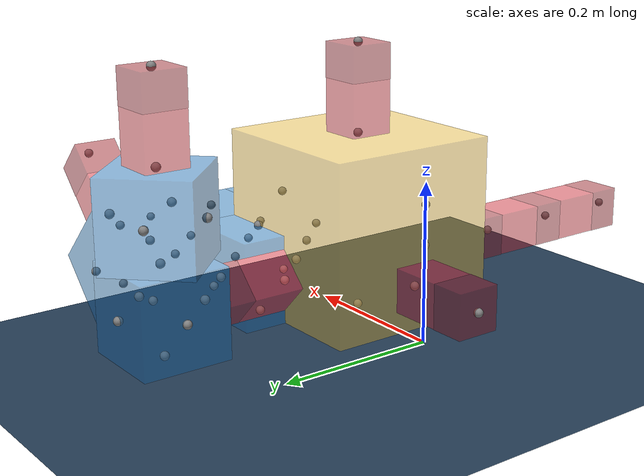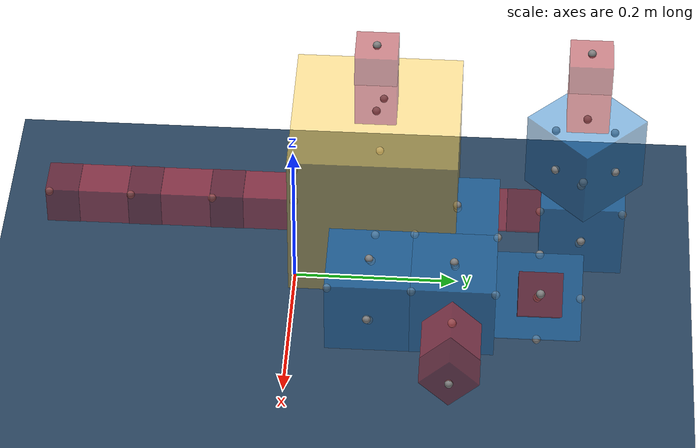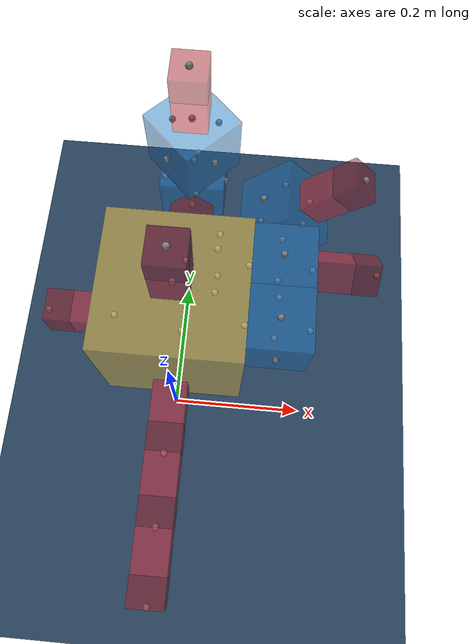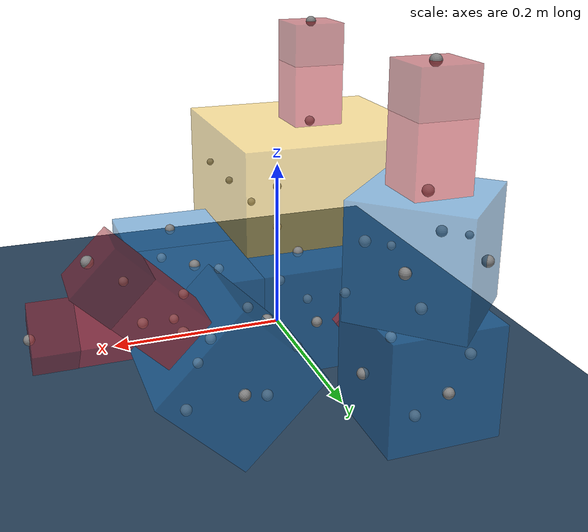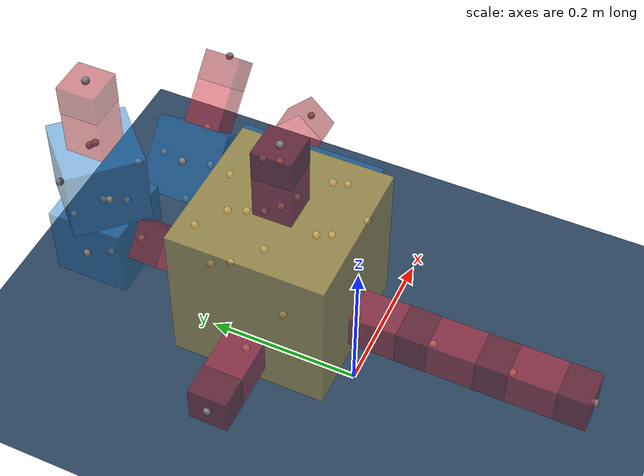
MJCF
<mujoco model="MuJoCo Model">
  <compiler angle="radian"/>

  <option integrator="implicitfast"/>

  <visual>
    <global offwidth="1280" offheight="960"/>
  </visual>

  <default>
    <default class="robot-main">
      <default class="robot-0-5-1-main"/>
      <default class="robot-0-15-0-main"/>
      <default class="robot-0-16-3-main"/>
      <default class="robot-0-13-4-main"/>
      <default class="robot-0-14-2-main"/>
      <default class="robot-5-12-0-main"/>
      <default class="robot-15-3-0-main"/>
      <default class="robot-14-19-5-main"/>
      <default class="robot-12-7-0-main"/>
      <default class="robot-3-9-2-main"/>
      <default class="robot-9-10-0-main"/>
      <default class="robot-19-6-0-main"/>
      <default class="robot-19-4-2-main"/>
      <default class="robot-19-1-3-main"/>
      <default class="robot-6-18-3-main"/>
    </default>
  </default>

  <asset>
    <texture type="2d" colorspace="auto" name="grid" builtin="checker" rgb1="0.1 0.2 0.3" rgb2="0.2 0.3 0.4" width="600" height="600"/>
    <material name="grid" texture="grid" texuniform="true" texrepeat="3 3" reflectance="0.2"/>
  </asset>

  <worldbody>
    <geom name="floor" size="1 1 0.1" type="plane" material="grid"/>
    <site pos="0 0 0.173205"/>
    <light name="light" pos="0 0 1" dir="0 0 -1" castshadow="false"/>
    <body name="robot-world" pos="0 0 0.173205">
      <joint type="free"/>
      <body name="robot-core">
        <geom name="robot-core" size="0.1 0.1 0.1" pos="0 0.1 0" type="box" mass="1" rgba="0.992157 0.792157 0.25098 0.5"/>
        <site name="robot-core-front" pos="0 0.2 -0.05"/>
        <site name="robot-core-back" pos="0 0 -0.05" quat="0 0 0 1"/>
        <site name="robot-core-left" pos="-0.1 0.1 -0.05" quat="0.707107 0 0 0.707107"/>
        <site name="robot-core-right" pos="0.1 0.1 -0.05" quat="-0.707107 0 0 0.707107"/>
        <site name="robot-core-top" pos="0 0.1 0.1" quat="0.707107 0.707107 0 0"/>
        <site name="robot-core-bottom" pos="0 0.1 -0.1" quat="0 0 -0.707107 0.707107"/>
        <body name="robot-0-5-1-hinge" pos="0 0 -0.05" quat="0 0 0 1">
          <body name="robot-0-5-1-stator" pos="0 0.03 0">
            <geom name="robot-0-5-1-stator" size="0.02475 0.0297 0.02475" type="box" mass="0.02" rgba="0.87451 0.160784 0.207843 0.5"/>
          </body>
          <body name="robot-0-5-1-rotor" pos="0 0.08 0">
            <joint name="robot-0-5-1-servo" pos="0 -0.02 0" axis="0 0 1"/>
            <geom name="robot-0-5-1-rotor" size="0.025 0.02 0.025" type="box" mass="0.04" rgba="0.627451 0.0941176 0.129412 0.5"/>
            <site name="robot-0-5-1-hinge-front" pos="0 0.02 0"/>
            <body name="robot-5-12-0-hinge" pos="0 0.02 0" quat="0 0 1 0">
              <body name="robot-5-12-0-stator" pos="0 0.03 0">
                <geom name="robot-5-12-0-stator" size="0.02475 0.0297 0.02475" type="box" mass="0.02" rgba="0.87451 0.160784 0.207843 0.5"/>
              </body>
              <body name="robot-5-12-0-rotor" pos="0 0.08 0">
                <joint name="robot-5-12-0-servo" pos="0 -0.02 0" axis="0 0 1"/>
                <geom name="robot-5-12-0-rotor" size="0.025 0.02 0.025" type="box" mass="0.04" rgba="0.627451 0.0941176 0.129412 0.5"/>
                <site name="robot-5-12-0-hinge-front" pos="0 0.02 0"/>
                <body name="robot-12-7-0-hinge" pos="0 0.02 0" quat="0 0 1 0">
                  <body name="robot-12-7-0-stator" pos="0 0.03 0">
                    <geom name="robot-12-7-0-stator" size="0.02475 0.0297 0.02475" type="box" mass="0.02" rgba="0.87451 0.160784 0.207843 0.5"/>
                  </body>
                  <body name="robot-12-7-0-rotor" pos="0 0.08 0">
                    <joint name="robot-12-7-0-servo" pos="0 -0.02 0" axis="0 0 1"/>
                    <geom name="robot-12-7-0-rotor" size="0.025 0.02 0.025" type="box" mass="0.04" rgba="0.627451 0.0941176 0.129412 0.5"/>
                    <site name="robot-12-7-0-hinge-front" pos="0 0.02 0"/>
                  </body>
                </body>
              </body>
            </body>
          </body>
        </body>
        <body name="robot-0-15-0-hinge" pos="0 0.2 -0.05" quat="-0.382911 0 0.923785 0">
          <body name="robot-0-15-0-stator" pos="0 0.03 0">
            <geom name="robot-0-15-0-stator" size="0.02475 0.0297 0.02475" type="box" mass="0.02" rgba="0.87451 0.160784 0.207843 0.5"/>
          </body>
          <body name="robot-0-15-0-rotor" pos="0 0.08 0">
            <joint name="robot-0-15-0-servo" pos="0 -0.02 0" axis="0 0 1"/>
            <geom name="robot-0-15-0-rotor" size="0.025 0.02 0.025" type="box" mass="0.04" rgba="0.627451 0.0941176 0.129412 0.5"/>
            <site name="robot-0-15-0-hinge-front" pos="0 0.02 0"/>
            <body name="robot-15-3-0-core" pos="0 0.02 0" quat="0.923785 0 0.382911 0">
              <geom name="robot-15-3-0-core" size="0.05 0.05 0.05" pos="0 0.05 0" type="box" mass="0.055" rgba="0.109804 0.466667 0.764706 0.5"/>
              <site name="robot-15-3-0-core-front" pos="0 0.1 0"/>
              <site name="robot-15-3-0-core-left" pos="-0.05 0.05 0" quat="0.707107 0 0 0.707107"/>
              <site name="robot-15-3-0-core-right" pos="0.05 0.05 0" quat="-0.707107 0 0 0.707107"/>
              <site name="robot-15-3-0-core-top" pos="0 0.05 0.05" quat="0.707107 0.707107 0 0"/>
              <site name="robot-15-3-0-core-bottom" pos="0 0.05 -0.05" quat="0 0 -0.707107 0.707107"/>
              <body name="robot-3-9-2-core" pos="0.05 0.05 0" quat="-0.653215 -0.270759 -0.270759 0.653215">
                <geom name="robot-3-9-2-core" size="0.05 0.05 0.05" pos="0 0.05 0" type="box" mass="0.055" rgba="0.109804 0.466667 0.764706 0.5"/>
                <site name="robot-3-9-2-core-front" pos="0 0.1 0"/>
                <site name="robot-3-9-2-core-left" pos="-0.05 0.05 0" quat="0.707107 0 0 0.707107"/>
                <site name="robot-3-9-2-core-right" pos="0.05 0.05 0" quat="-0.707107 0 0 0.707107"/>
                <site name="robot-3-9-2-core-top" pos="0 0.05 0.05" quat="0.707107 0.707107 0 0"/>
                <site name="robot-3-9-2-core-bottom" pos="0 0.05 -0.05" quat="0 0 -0.707107 0.707107"/>
                <body name="robot-9-10-0-hinge" pos="0 0.1 0" quat="-0.923785 0 0.382911 0">
                  <body name="robot-9-10-0-stator" pos="0 0.03 0">
                    <geom name="robot-9-10-0-stator" size="0.02475 0.0297 0.02475" type="box" mass="0.02" rgba="0.87451 0.160784 0.207843 0.5"/>
                  </body>
                  <body name="robot-9-10-0-rotor" pos="0 0.08 0">
                    <joint name="robot-9-10-0-servo" pos="0 -0.02 0" axis="0 0 1"/>
                    <geom name="robot-9-10-0-rotor" size="0.025 0.02 0.025" type="box" mass="0.04" rgba="0.627451 0.0941176 0.129412 0.5"/>
                    <site name="robot-9-10-0-hinge-front" pos="0 0.02 0"/>
                  </body>
                </body>
              </body>
            </body>
          </body>
        </body>
        <body name="robot-0-16-3-hinge" pos="-0.1 0.1 -0.05" quat="-0.5 -0.5 0.5 -0.5">
          <body name="robot-0-16-3-stator" pos="0 0.03 0">
            <geom name="robot-0-16-3-stator" size="0.02475 0.0297 0.02475" type="box" mass="0.02" rgba="0.87451 0.160784 0.207843 0.5"/>
          </body>
          <body name="robot-0-16-3-rotor" pos="0 0.08 0">
            <joint name="robot-0-16-3-servo" pos="0 -0.02 0" axis="0 0 1"/>
            <geom name="robot-0-16-3-rotor" size="0.025 0.02 0.025" type="box" mass="0.04" rgba="0.627451 0.0941176 0.129412 0.5"/>
            <site name="robot-0-16-3-hinge-front" pos="0 0.02 0"/>
          </body>
        </body>
        <body name="robot-0-13-4-hinge" pos="0 0.1 0.1" quat="0.707107 0.707107 0 0">
          <body name="robot-0-13-4-stator" pos="0 0.03 0">
            <geom name="robot-0-13-4-stator" size="0.02475 0.0297 0.02475" type="box" mass="0.02" rgba="0.87451 0.160784 0.207843 0.5"/>
          </body>
          <body name="robot-0-13-4-rotor" pos="0 0.08 0">
            <joint name="robot-0-13-4-servo" pos="0 -0.02 0" axis="0 0 1"/>
            <geom name="robot-0-13-4-rotor" size="0.025 0.02 0.025" type="box" mass="0.04" rgba="0.627451 0.0941176 0.129412 0.5"/>
            <site name="robot-0-13-4-hinge-front" pos="0 0.02 0"/>
          </body>
        </body>
        <body name="robot-0-14-2-core" pos="0.1 0.1 -0.05" quat="-0.5 -0.5 -0.5 0.5">
          <geom name="robot-0-14-2-core" size="0.05 0.05 0.05" pos="0 0.05 0" type="box" mass="0.055" rgba="0.109804 0.466667 0.764706 0.5"/>
          <site name="robot-0-14-2-core-front" pos="0 0.1 0"/>
          <site name="robot-0-14-2-core-left" pos="-0.05 0.05 0" quat="0.707107 0 0 0.707107"/>
          <site name="robot-0-14-2-core-right" pos="0.05 0.05 0" quat="-0.707107 0 0 0.707107"/>
          <site name="robot-0-14-2-core-top" pos="0 0.05 0.05" quat="0.707107 0.707107 0 0"/>
          <site name="robot-0-14-2-core-bottom" pos="0 0.05 -0.05" quat="0 0 -0.707107 0.707107"/>
          <body name="robot-14-19-5-core" pos="0 0.05 -0.05" quat="0.5 -0.5 -0.5 0.5">
            <geom name="robot-14-19-5-core" size="0.05 0.05 0.05" pos="0 0.05 0" type="box" mass="0.055" rgba="0.109804 0.466667 0.764706 0.5"/>
            <site name="robot-14-19-5-core-front" pos="0 0.1 0"/>
            <site name="robot-14-19-5-core-left" pos="-0.05 0.05 0" quat="0.707107 0 0 0.707107"/>
            <site name="robot-14-19-5-core-right" pos="0.05 0.05 0" quat="-0.707107 0 0 0.707107"/>
            <site name="robot-14-19-5-core-top" pos="0 0.05 0.05" quat="0.707107 0.707107 0 0"/>
            <site name="robot-14-19-5-core-bottom" pos="0 0.05 -0.05" quat="0 0 -0.707107 0.707107"/>
            <body name="robot-19-6-0-core" pos="0 0.1 0" quat="0.382911 0 0.923785 0">
              <geom name="robot-19-6-0-core" size="0.05 0.05 0.05" pos="0 0.05 0" type="box" mass="0.055" rgba="0.109804 0.466667 0.764706 0.5"/>
              <site name="robot-19-6-0-core-front" pos="0 0.1 0"/>
              <site name="robot-19-6-0-core-left" pos="-0.05 0.05 0" quat="0.707107 0 0 0.707107"/>
              <site name="robot-19-6-0-core-right" pos="0.05 0.05 0" quat="-0.707107 0 0 0.707107"/>
              <site name="robot-19-6-0-core-top" pos="0 0.05 0.05" quat="0.707107 0.707107 0 0"/>
              <site name="robot-19-6-0-core-bottom" pos="0 0.05 -0.05" quat="0 0 -0.707107 0.707107"/>
              <body name="robot-6-18-3-hinge" pos="-0.05 0.05 0" quat="-0.5 -0.5 0.5 -0.5">
                <body name="robot-6-18-3-stator" pos="0 0.03 0">
                  <geom name="robot-6-18-3-stator" size="0.02475 0.0297 0.02475" type="box" mass="0.02" rgba="0.87451 0.160784 0.207843 0.5"/>
                </body>
                <body name="robot-6-18-3-rotor" pos="0 0.08 0">
                  <joint name="robot-6-18-3-servo" pos="0 -0.02 0" axis="0 0 1"/>
                  <geom name="robot-6-18-3-rotor" size="0.025 0.02 0.025" type="box" mass="0.04" rgba="0.627451 0.0941176 0.129412 0.5"/>
                  <site name="robot-6-18-3-hinge-front" pos="0 0.02 0"/>
                </body>
              </body>
            </body>
            <body name="robot-19-4-2-hinge" pos="0.05 0.05 0" quat="0.270759 -0.653215 -0.653215 -0.270759">
              <body name="robot-19-4-2-stator" pos="0 0.03 0">
                <geom name="robot-19-4-2-stator" size="0.02475 0.0297 0.02475" type="box" mass="0.02" rgba="0.87451 0.160784 0.207843 0.5"/>
              </body>
              <body name="robot-19-4-2-rotor" pos="0 0.08 0">
                <joint name="robot-19-4-2-servo" pos="0 -0.02 0" axis="0 0 1"/>
                <geom name="robot-19-4-2-rotor" size="0.025 0.02 0.025" type="box" mass="0.04" rgba="0.627451 0.0941176 0.129412 0.5"/>
                <site name="robot-19-4-2-hinge-front" pos="0 0.02 0"/>
              </body>
            </body>
            <body name="robot-19-1-3-core" pos="-0.05 0.05 0" quat="0.707107 0 0 0.707107">
              <geom name="robot-19-1-3-core" size="0.05 0.05 0.05" pos="0 0.05 0" type="box" mass="0.055" rgba="0.109804 0.466667 0.764706 0.5"/>
              <site name="robot-19-1-3-core-front" pos="0 0.1 0"/>
              <site name="robot-19-1-3-core-left" pos="-0.05 0.05 0" quat="0.707107 0 0 0.707107"/>
              <site name="robot-19-1-3-core-right" pos="0.05 0.05 0" quat="-0.707107 0 0 0.707107"/>
              <site name="robot-19-1-3-core-top" pos="0 0.05 0.05" quat="0.707107 0.707107 0 0"/>
              <site name="robot-19-1-3-core-bottom" pos="0 0.05 -0.05" quat="0 0 -0.707107 0.707107"/>
            </body>
          </body>
        </body>
      </body>
    </body>
  </worldbody>

  <contact>
    <exclude body1="robot-0-5-1-stator" body2="robot-0-5-1-rotor"/>
    <exclude body1="robot-5-12-0-stator" body2="robot-5-12-0-rotor"/>
    <exclude body1="robot-12-7-0-stator" body2="robot-12-7-0-rotor"/>
    <exclude body1="robot-0-15-0-stator" body2="robot-0-15-0-rotor"/>
    <exclude body1="robot-9-10-0-stator" body2="robot-9-10-0-rotor"/>
    <exclude body1="robot-0-16-3-stator" body2="robot-0-16-3-rotor"/>
    <exclude body1="robot-0-13-4-stator" body2="robot-0-13-4-rotor"/>
    <exclude body1="robot-6-18-3-stator" body2="robot-6-18-3-rotor"/>
    <exclude body1="robot-19-4-2-stator" body2="robot-19-4-2-rotor"/>
  </contact>

  <actuator>
    <general name="robot-0-5-1-servo" joint="robot-0-5-1-servo" ctrlrange="-1.5708 1.5708" dynprm="0 0 0 0 0 0 0 0 0 0" biastype="affine" biasprm="0 -1 -1"/>
    <general name="robot-0-15-0-servo" joint="robot-0-15-0-servo" ctrlrange="-1.5708 1.5708" dynprm="0 0 0 0 0 0 0 0 0 0" biastype="affine" biasprm="0 -1 -1"/>
    <general name="robot-0-16-3-servo" joint="robot-0-16-3-servo" ctrlrange="-1.5708 1.5708" dynprm="0 0 0 0 0 0 0 0 0 0" biastype="affine" biasprm="0 -1 -1"/>
    <general name="robot-0-13-4-servo" joint="robot-0-13-4-servo" ctrlrange="-1.5708 1.5708" dynprm="0 0 0 0 0 0 0 0 0 0" biastype="affine" biasprm="0 -1 -1"/>
    <general name="robot-5-12-0-servo" joint="robot-5-12-0-servo" ctrlrange="-1.5708 1.5708" dynprm="0 0 0 0 0 0 0 0 0 0" biastype="affine" biasprm="0 -1 -1"/>
    <general name="robot-12-7-0-servo" joint="robot-12-7-0-servo" ctrlrange="-1.5708 1.5708" dynprm="0 0 0 0 0 0 0 0 0 0" biastype="affine" biasprm="0 -1 -1"/>
    <general name="robot-9-10-0-servo" joint="robot-9-10-0-servo" ctrlrange="-1.5708 1.5708" dynprm="0 0 0 0 0 0 0 0 0 0" biastype="affine" biasprm="0 -1 -1"/>
    <general name="robot-19-4-2-servo" joint="robot-19-4-2-servo" ctrlrange="-1.5708 1.5708" dynprm="0 0 0 0 0 0 0 0 0 0" biastype="affine" biasprm="0 -1 -1"/>
    <general name="robot-6-18-3-servo" joint="robot-6-18-3-servo" ctrlrange="-1.5708 1.5708" dynprm="0 0 0 0 0 0 0 0 0 0" biastype="affine" biasprm="0 -1 -1"/>
  </actuator>
</mujoco>
